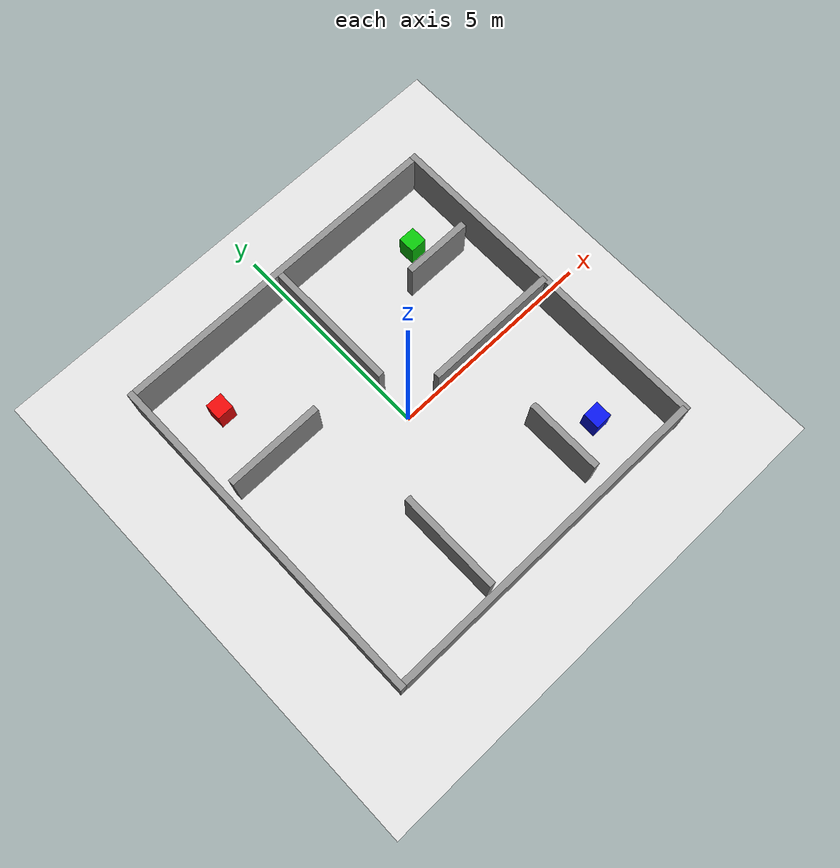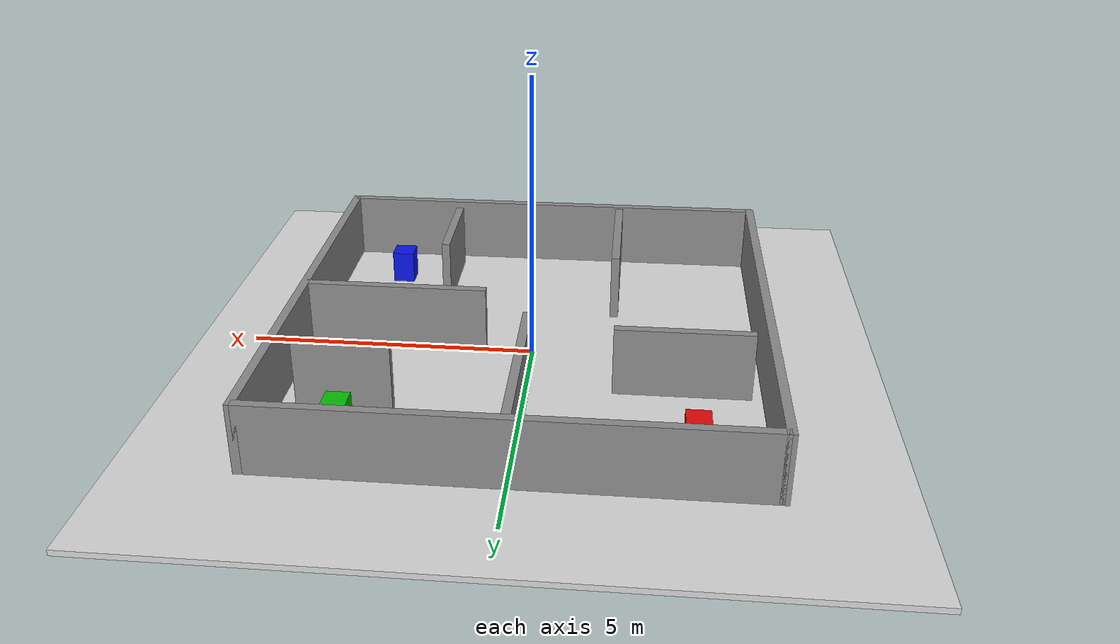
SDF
<?xml version='1.0' encoding='utf-8'?>
<sdf version="1.8">
  <world name="final_exploration">
    <physics name="physics" type="ignored">
      <max_step_size>0.001</max_step_size>
      <real_time_factor>1</real_time_factor>
    </physics>
    <plugin filename="gz-sim-physics-system" name="gz::sim::systems::Physics" />
    <plugin filename="gz-sim-user-commands-system" name="gz::sim::systems::UserCommands" />
    <plugin filename="gz-sim-scene-broadcaster-system" name="gz::sim::systems::SceneBroadcaster" />
    <plugin filename="gz-sim-sensors-system" name="gz::sim::systems::Sensors">
      <render_engine>ogre2</render_engine>
    </plugin>
    <plugin filename="gz-sim-imu-system" name="gz::sim::systems::Imu" />
    <scene>
      <ambient>0.6 0.6 0.6 1</ambient>
      <background>0.8 0.85 0.9 1</background>
      <grid>false</grid>
    </scene>
    <light name="sun" type="directional">
      <pose>0 0 10 0 0 0</pose>
      <direction>-0.3 0.2 -1</direction>
      <diffuse>0.8 0.8 0.8 1</diffuse>
      <cast_shadows>false</cast_shadows>
    </light>
    <model name="floor">
      <static>true</static>
      <pose>0.000000 0.000000 -0.050000 0 0 0.000000</pose>
      <link name="body">
        <collision name="collision">
          <geometry>
            <box>
              <size>12 12 0.1</size>
            </box>
          </geometry>
        </collision>
        <visual name="visual">
          <geometry>
            <box>
              <size>12 12 0.1</size>
            </box>
          </geometry>
          <cast_shadows>false</cast_shadows>
          <material>
            <ambient>0.85 0.85 0.85 1</ambient>
            <diffuse>0.85 0.85 0.85 1</diffuse>
          </material>
        </visual>
      </link>
    </model>
    <model name="wall_0">
      <static>true</static>
      <pose>-4.000000 0.000000 0.600000 0 0 0.000000</pose>
      <link name="body">
        <collision name="collision">
          <geometry>
            <box>
              <size>0.15 8.15 1.2</size>
            </box>
          </geometry>
        </collision>
        <visual name="visual">
          <geometry>
            <box>
              <size>0.15 8.15 1.2</size>
            </box>
          </geometry>
          <cast_shadows>false</cast_shadows>
          <material>
            <ambient>0.55 0.55 0.55 1</ambient>
            <diffuse>0.55 0.55 0.55 1</diffuse>
          </material>
        </visual>
      </link>
    </model>
    <model name="wall_1">
      <static>true</static>
      <pose>4.000000 0.000000 0.600000 0 0 0.000000</pose>
      <link name="body">
        <collision name="collision">
          <geometry>
            <box>
              <size>0.15 8.15 1.2</size>
            </box>
          </geometry>
        </collision>
        <visual name="visual">
          <geometry>
            <box>
              <size>0.15 8.15 1.2</size>
            </box>
          </geometry>
          <cast_shadows>false</cast_shadows>
          <material>
            <ambient>0.55 0.55 0.55 1</ambient>
            <diffuse>0.55 0.55 0.55 1</diffuse>
          </material>
        </visual>
      </link>
    </model>
    <model name="wall_2">
      <static>true</static>
      <pose>0.000000 -4.000000 0.600000 0 0 0.000000</pose>
      <link name="body">
        <collision name="collision">
          <geometry>
            <box>
              <size>8 0.15 1.2</size>
            </box>
          </geometry>
        </collision>
        <visual name="visual">
          <geometry>
            <box>
              <size>8 0.15 1.2</size>
            </box>
          </geometry>
          <cast_shadows>false</cast_shadows>
          <material>
            <ambient>0.55 0.55 0.55 1</ambient>
            <diffuse>0.55 0.55 0.55 1</diffuse>
          </material>
        </visual>
      </link>
    </model>
    <model name="wall_3">
      <static>true</static>
      <pose>0.000000 4.000000 0.600000 0 0 0.000000</pose>
      <link name="body">
        <collision name="collision">
          <geometry>
            <box>
              <size>8 0.15 1.2</size>
            </box>
          </geometry>
        </collision>
        <visual name="visual">
          <geometry>
            <box>
              <size>8 0.15 1.2</size>
            </box>
          </geometry>
          <cast_shadows>false</cast_shadows>
          <material>
            <ambient>0.55 0.55 0.55 1</ambient>
            <diffuse>0.55 0.55 0.55 1</diffuse>
          </material>
        </visual>
      </link>
    </model>
    <model name="wall_4">
      <static>true</static>
      <pose>0.000000 2.400000 0.600000 0 0 0.000000</pose>
      <link name="body">
        <collision name="collision">
          <geometry>
            <box>
              <size>0.15 3.2 1.2</size>
            </box>
          </geometry>
        </collision>
        <visual name="visual">
          <geometry>
            <box>
              <size>0.15 3.2 1.2</size>
            </box>
          </geometry>
          <cast_shadows>false</cast_shadows>
          <material>
            <ambient>0.55 0.55 0.55 1</ambient>
            <diffuse>0.55 0.55 0.55 1</diffuse>
          </material>
        </visual>
      </link>
    </model>
    <model name="wall_5">
      <static>true</static>
      <pose>2.400000 0.000000 0.600000 0 0 0.000000</pose>
      <link name="body">
        <collision name="collision">
          <geometry>
            <box>
              <size>3.2 0.15 1.2</size>
            </box>
          </geometry>
        </collision>
        <visual name="visual">
          <geometry>
            <box>
              <size>3.2 0.15 1.2</size>
            </box>
          </geometry>
          <cast_shadows>false</cast_shadows>
          <material>
            <ambient>0.55 0.55 0.55 1</ambient>
            <diffuse>0.55 0.55 0.55 1</diffuse>
          </material>
        </visual>
      </link>
    </model>
    <include>
      <uri>model://final_block_red</uri>
      <pose>-2.8 2.8 0.3 0 0 0</pose>
    </include>
    <include>
      <uri>model://final_block_green</uri>
      <pose>2.8 2.8 0.3 0 0 0</pose>
    </include>
    <include>
      <uri>model://final_block_blue</uri>
      <pose>2.8 -2.8 0.3 0 0 0</pose>
    </include>
    <model name="search_screen_0">
      <static>true</static>
      <pose>-1.400000 -2.650000 0.600000 0 0 0.000000</pose>
      <link name="body">
        <collision name="collision">
          <geometry>
            <box>
              <size>0.15 2.4 1.2</size>
            </box>
          </geometry>
        </collision>
        <visual name="visual">
          <geometry>
            <box>
              <size>0.15 2.4 1.2</size>
            </box>
          </geometry>
          <cast_shadows>false</cast_shadows>
          <material>
            <ambient>.55 .55 .55 1</ambient>
            <diffuse>.55 .55 .55 1</diffuse>
          </material>
        </visual>
      </link>
    </model>
    <model name="search_screen_1">
      <static>true</static>
      <pose>-2.600000 1.200000 0.600000 0 0 0.000000</pose>
      <link name="body">
        <collision name="collision">
          <geometry>
            <box>
              <size>2.3 0.15 1.2</size>
            </box>
          </geometry>
        </collision>
        <visual name="visual">
          <geometry>
            <box>
              <size>2.3 0.15 1.2</size>
            </box>
          </geometry>
          <cast_shadows>false</cast_shadows>
          <material>
            <ambient>.55 .55 .55 1</ambient>
            <diffuse>.55 .55 .55 1</diffuse>
          </material>
        </visual>
      </link>
    </model>
    <model name="search_screen_2">
      <static>true</static>
      <pose>2.850000 2.100000 0.600000 0 0 0.000000</pose>
      <link name="body">
        <collision name="collision">
          <geometry>
            <box>
              <size>1.6 0.15 1.2</size>
            </box>
          </geometry>
        </collision>
        <visual name="visual">
          <geometry>
            <box>
              <size>1.6 0.15 1.2</size>
            </box>
          </geometry>
          <cast_shadows>false</cast_shadows>
          <material>
            <ambient>.55 .55 .55 1</ambient>
            <diffuse>.55 .55 .55 1</diffuse>
          </material>
        </visual>
      </link>
    </model>
    <model name="search_screen_3">
      <static>true</static>
      <pose>1.800000 -2.700000 0.600000 0 0 0.000000</pose>
      <link name="body">
        <collision name="collision">
          <geometry>
            <box>
              <size>0.15 1.8 1.2</size>
            </box>
          </geometry>
        </collision>
        <visual name="visual">
          <geometry>
            <box>
              <size>0.15 1.8 1.2</size>
            </box>
          </geometry>
          <cast_shadows>false</cast_shadows>
          <material>
            <ambient>.55 .55 .55 1</ambient>
            <diffuse>.55 .55 .55 1</diffuse>
          </material>
        </visual>
      </link>
    </model>
  </world>
</sdf>

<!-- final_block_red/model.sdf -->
<sdf version="1.8">
  <model name="final_block_red">
    <static>true</static>
    <pose>0.000000 0.000000 0.300000 0 0 0.000000</pose>
    <link name="body">
      <collision name="collision">
        <geometry>
          <box>
            <size>0.4 0.4 0.6</size>
          </box>
        </geometry>
      </collision>
      <visual name="visual">
        <geometry>
          <box>
            <size>0.4 0.4 0.6</size>
          </box>
        </geometry>
        <cast_shadows>false</cast_shadows>
        <material>
          <ambient>0.9 0.03 0.03 1</ambient>
          <diffuse>0.9 0.03 0.03 1</diffuse>
        </material>
      </visual>
    </link>
  </model>
</sdf>

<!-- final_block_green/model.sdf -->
<sdf version="1.8">
  <model name="final_block_green">
    <static>true</static>
    <pose>0.000000 0.000000 0.300000 0 0 0.000000</pose>
    <link name="body">
      <collision name="collision">
        <geometry>
          <box>
            <size>0.4 0.4 0.6</size>
          </box>
        </geometry>
      </collision>
      <visual name="visual">
        <geometry>
          <box>
            <size>0.4 0.4 0.6</size>
          </box>
        </geometry>
        <cast_shadows>false</cast_shadows>
        <material>
          <ambient>0.03 0.75 0.03 1</ambient>
          <diffuse>0.03 0.75 0.03 1</diffuse>
        </material>
      </visual>
    </link>
  </model>
</sdf>

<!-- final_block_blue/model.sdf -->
<sdf version="1.8">
  <model name="final_block_blue">
    <static>true</static>
    <pose>0.000000 0.000000 0.300000 0 0 0.000000</pose>
    <link name="body">
      <collision name="collision">
        <geometry>
          <box>
            <size>0.4 0.4 0.6</size>
          </box>
        </geometry>
      </collision>
      <visual name="visual">
        <geometry>
          <box>
            <size>0.4 0.4 0.6</size>
          </box>
        </geometry>
        <cast_shadows>false</cast_shadows>
        <material>
          <ambient>0.03 0.08 0.9 1</ambient>
          <diffuse>0.03 0.08 0.9 1</diffuse>
        </material>
      </visual>
    </link>
  </model>
</sdf>
